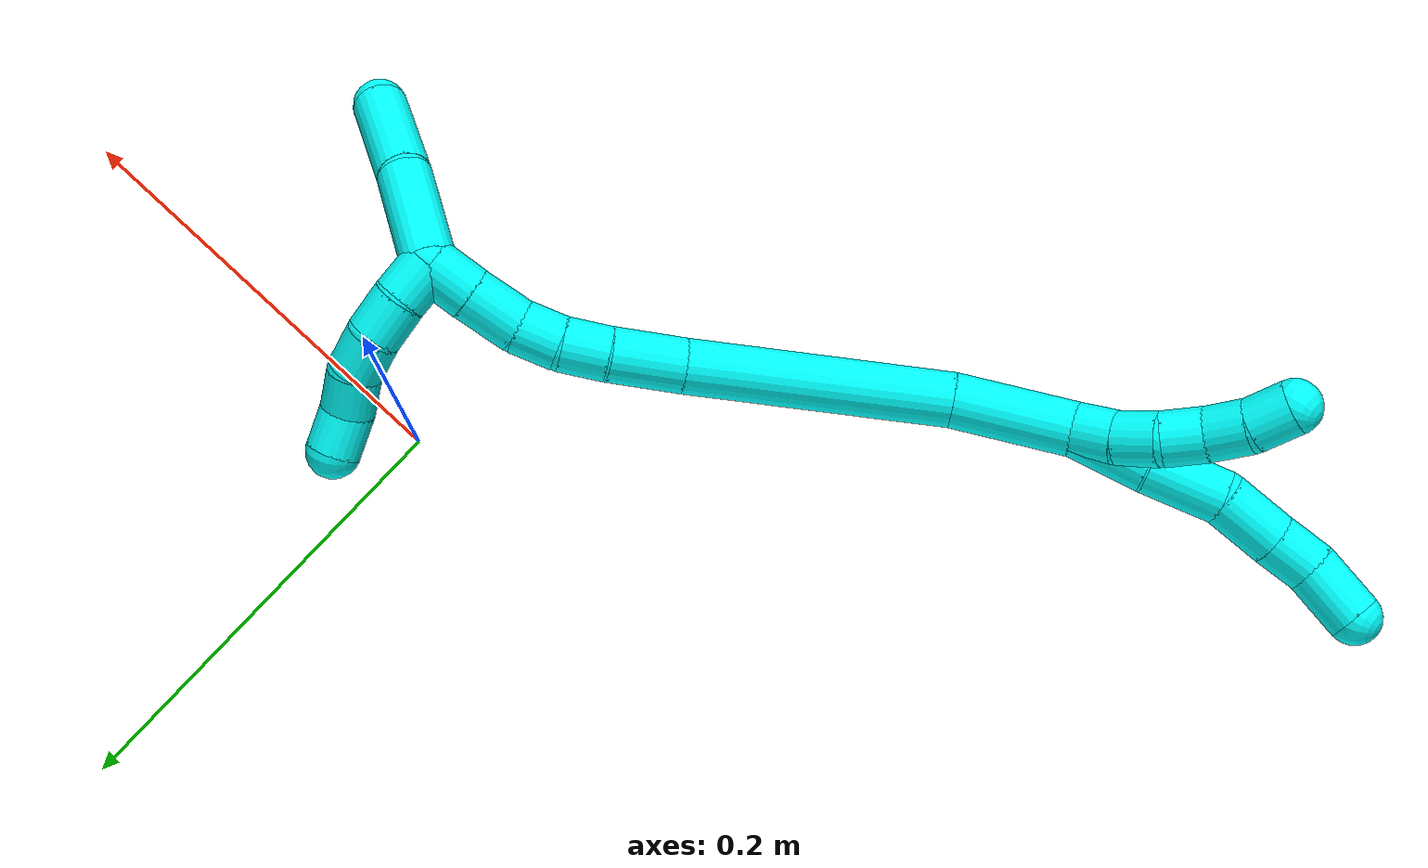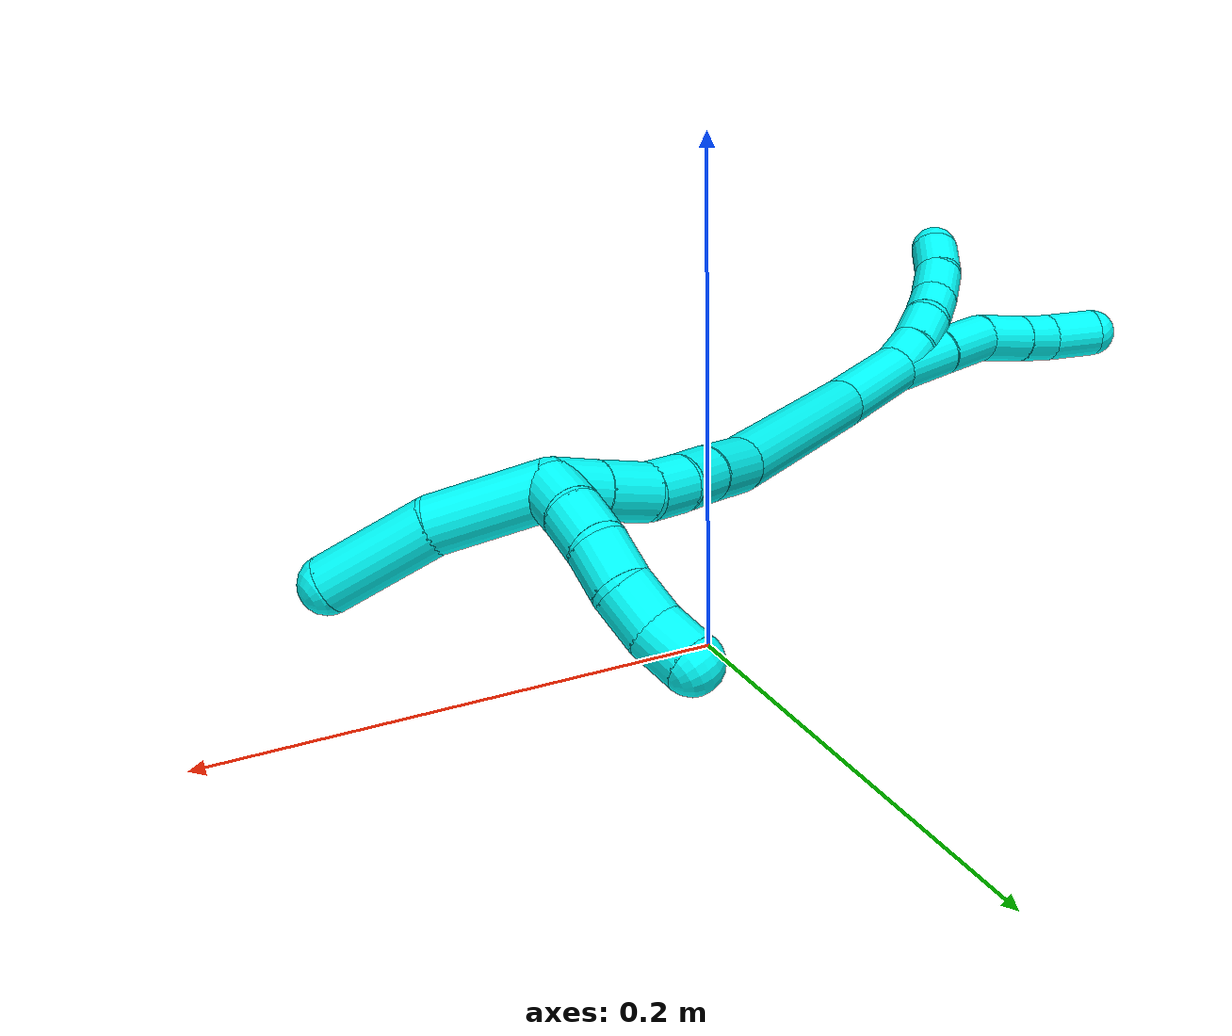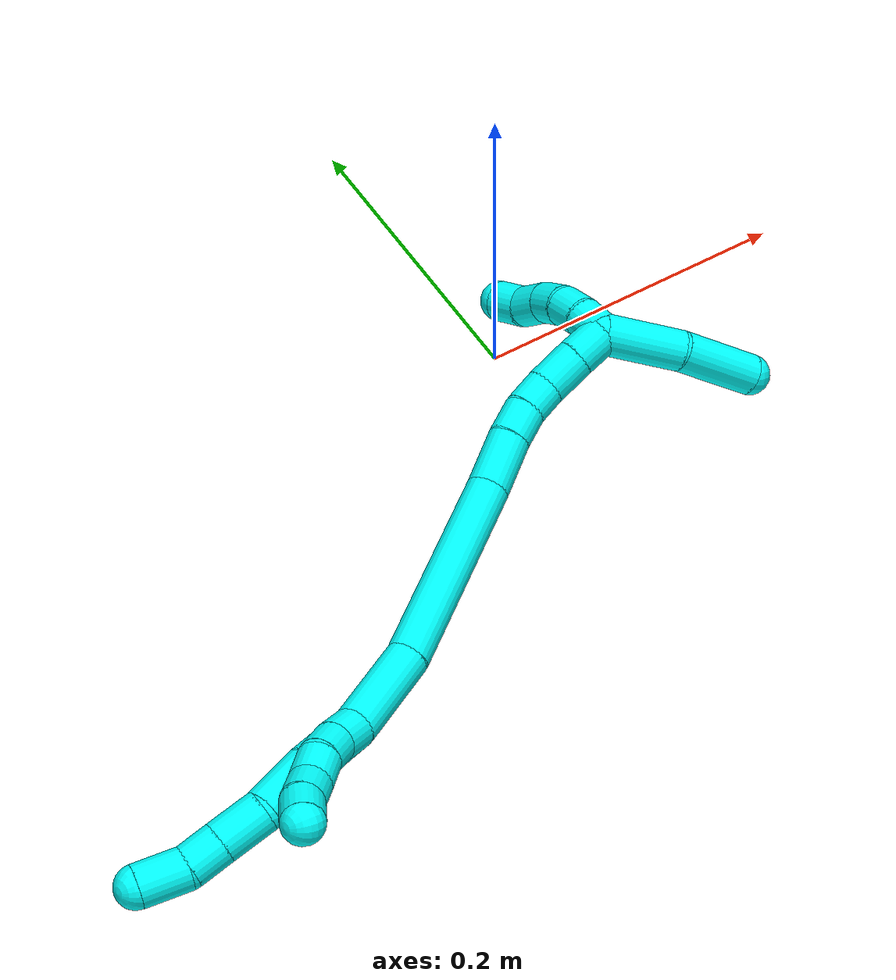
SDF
<sdf version="1.7">
 <world name="default">
  <model name="3">
   <static>0</static>
   <link name="3">
    <collision name="collision-cylinder-e_1_2_8">
     <pose>-0.00657 0.000202 0.016685 -0.012132 -0.375085 0.002302</pose>
     <geometry><cylinder><radius>0.0125</radius><length>0.035867</length></cylinder></geometry>
     <surface>
      <friction><ode><mu>1.16</mu><mu2>1.16</mu2><slip1>0</slip1><slip2>0</slip2></ode></friction>
      <contact><ode><kp>1e+06</kp><kd>1</kd><max_vel>0</max_vel><min_depth>0.001</min_depth></ode></contact>
     </surface>
    </collision>
    <visual name="visual-cylinder-e_1_2_8">
     <pose>-0.00657 0.000202 0.016685 -0.012132 -0.375085 0.002302</pose>
     <geometry><cylinder><radius>0.0125</radius><length>0.035867</length></cylinder></geometry>
     <material><ambient>0.003922 1 0.996078 1</ambient></material>
    </visual>
    <collision name="collision-cylinder-e_2_8_9">
     <pose>-0.02081 -0.000328 0.049236 0.046153 -0.449944 -0.010564</pose>
     <geometry><cylinder><radius>0.0125</radius><length>0.035274</length></cylinder></geometry>
     <surface>
      <friction><ode><mu>1.16</mu><mu2>1.16</mu2><slip1>0</slip1><slip2>0</slip2></ode></friction>
      <contact><ode><kp>1e+06</kp><kd>1</kd><max_vel>0</max_vel><min_depth>0.001</min_depth></ode></contact>
     </surface>
    </collision>
    <visual name="visual-cylinder-e_2_8_9">
     <pose>-0.02081 -0.000328 0.049236 0.046153 -0.449944 -0.010564</pose>
     <geometry><cylinder><radius>0.0125</radius><length>0.035274</length></cylinder></geometry>
     <material><ambient>0.003922 1 0.996078 1</ambient></material>
    </visual>
    <collision name="collision-cylinder-e_3_9_10">
     <pose>-0.035437 0.002573 0.077183 -0.29208 -0.50386 0.075684</pose>
     <geometry><cylinder><radius>0.0125</radius><length>0.028816</length></cylinder></geometry>
     <surface>
      <friction><ode><mu>1.16</mu><mu2>1.16</mu2><slip1>0</slip1><slip2>0</slip2></ode></friction>
      <contact><ode><kp>1e+06</kp><kd>1</kd><max_vel>0</max_vel><min_depth>0.001</min_depth></ode></contact>
     </surface>
    </collision>
    <visual name="visual-cylinder-e_3_9_10">
     <pose>-0.035437 0.002573 0.077183 -0.29208 -0.50386 0.075684</pose>
     <geometry><cylinder><radius>0.0125</radius><length>0.028816</length></cylinder></geometry>
     <material><ambient>0.003922 1 0.996078 1</ambient></material>
    </visual>
    <collision name="collision-cylinder-e_4_10_11">
     <pose>-0.047459 0.008481 0.098503 -0.241567 -0.48931 0.060585</pose>
     <geometry><cylinder><radius>0.0125</radius><length>0.021555</length></cylinder></geometry>
     <surface>
      <friction><ode><mu>1.16</mu><mu2>1.16</mu2><slip1>0</slip1><slip2>0</slip2></ode></friction>
      <contact><ode><kp>1e+06</kp><kd>1</kd><max_vel>0</max_vel><min_depth>0.001</min_depth></ode></contact>
     </surface>
    </collision>
    <visual name="visual-cylinder-e_4_10_11">
     <pose>-0.047459 0.008481 0.098503 -0.241567 -0.48931 0.060585</pose>
     <geometry><cylinder><radius>0.0125</radius><length>0.021555</length></cylinder></geometry>
     <material><ambient>0.003922 1 0.996078 1</ambient></material>
    </visual>
    <collision name="collision-cylinder-e_5_11_6">
     <pose>-0.05587 0.016265 0.120443 -0.409129 -0.237045 0.0494</pose>
     <geometry><cylinder><radius>0.0125</radius><length>0.028488</length></cylinder></geometry>
     <surface>
      <friction><ode><mu>1.16</mu><mu2>1.16</mu2><slip1>0</slip1><slip2>0</slip2></ode></friction>
      <contact><ode><kp>1e+06</kp><kd>1</kd><max_vel>0</max_vel><min_depth>0.001</min_depth></ode></contact>
     </surface>
    </collision>
    <visual name="visual-cylinder-e_5_11_6">
     <pose>-0.05587 0.016265 0.120443 -0.409129 -0.237045 0.0494</pose>
     <geometry><cylinder><radius>0.0125</radius><length>0.028488</length></cylinder></geometry>
     <material><ambient>0.003922 1 0.996078 1</ambient></material>
    </visual>
    <collision name="collision-cylinder-e_1_2_12">
     <pose>-0.000612 -0.002716 0.009605 0.275551 -0.061211 -0.00849</pose>
     <geometry><cylinder><radius>0.0125</radius><length>0.02</length></cylinder></geometry>
     <surface>
      <friction><ode><mu>1.16</mu><mu2>1.16</mu2><slip1>0</slip1><slip2>0</slip2></ode></friction>
      <contact><ode><kp>1e+06</kp><kd>1</kd><max_vel>0</max_vel><min_depth>0.001</min_depth></ode></contact>
     </surface>
    </collision>
    <visual name="visual-cylinder-e_1_2_12">
     <pose>-0.000612 -0.002716 0.009605 0.275551 -0.061211 -0.00849</pose>
     <geometry><cylinder><radius>0.0125</radius><length>0.02</length></cylinder></geometry>
     <material><ambient>0.003922 1 0.996078 1</ambient></material>
    </visual>
    <collision name="collision-cylinder-e_2_12_13">
     <pose>-0.001787 -0.009868 0.028154 0.460436 -0.056375 -0.013216</pose>
     <geometry><cylinder><radius>0.0125</radius><length>0.02</length></cylinder></geometry>
     <surface>
      <friction><ode><mu>1.16</mu><mu2>1.16</mu2><slip1>0</slip1><slip2>0</slip2></ode></friction>
      <contact><ode><kp>1e+06</kp><kd>1</kd><max_vel>0</max_vel><min_depth>0.001</min_depth></ode></contact>
     </surface>
    </collision>
    <visual name="visual-cylinder-e_2_12_13">
     <pose>-0.001787 -0.009868 0.028154 0.460436 -0.056375 -0.013216</pose>
     <geometry><cylinder><radius>0.0125</radius><length>0.02</length></cylinder></geometry>
     <material><ambient>0.003922 1 0.996078 1</ambient></material>
    </visual>
    <collision name="collision-cylinder-e_3_13_14">
     <pose>-0.005259 -0.019689 0.045006 0.597874 -0.295164 -0.091564</pose>
     <geometry><cylinder><radius>0.0125</radius><length>0.02</length></cylinder></geometry>
     <surface>
      <friction><ode><mu>1.16</mu><mu2>1.16</mu2><slip1>0</slip1><slip2>0</slip2></ode></friction>
      <contact><ode><kp>1e+06</kp><kd>1</kd><max_vel>0</max_vel><min_depth>0.001</min_depth></ode></contact>
     </surface>
    </collision>
    <visual name="visual-cylinder-e_3_13_14">
     <pose>-0.005259 -0.019689 0.045006 0.597874 -0.295164 -0.091564</pose>
     <geometry><cylinder><radius>0.0125</radius><length>0.02</length></cylinder></geometry>
     <material><ambient>0.003922 1 0.996078 1</ambient></material>
    </visual>
    <collision name="collision-cylinder-e_4_14_15">
     <pose>-0.008652 -0.031232 0.060779 0.664229 -0.048433 -0.016707</pose>
     <geometry><cylinder><radius>0.0125</radius><length>0.02</length></cylinder></geometry>
     <surface>
      <friction><ode><mu>1.16</mu><mu2>1.16</mu2><slip1>0</slip1><slip2>0</slip2></ode></friction>
      <contact><ode><kp>1e+06</kp><kd>1</kd><max_vel>0</max_vel><min_depth>0.001</min_depth></ode></contact>
     </surface>
    </collision>
    <visual name="visual-cylinder-e_4_14_15">
     <pose>-0.008652 -0.031232 0.060779 0.664229 -0.048433 -0.016707</pose>
     <geometry><cylinder><radius>0.0125</radius><length>0.02</length></cylinder></geometry>
     <material><ambient>0.003922 1 0.996078 1</ambient></material>
    </visual>
    <collision name="collision-cylinder-e_5_15_5">
     <pose>-0.010117 -0.04514 0.074886 0.892687 -0.09819 -0.047018</pose>
     <geometry><cylinder><radius>0.0125</radius><length>0.02</length></cylinder></geometry>
     <surface>
      <friction><ode><mu>1.16</mu><mu2>1.16</mu2><slip1>0</slip1><slip2>0</slip2></ode></friction>
      <contact><ode><kp>1e+06</kp><kd>1</kd><max_vel>0</max_vel><min_depth>0.001</min_depth></ode></contact>
     </surface>
    </collision>
    <visual name="visual-cylinder-e_5_15_5">
     <pose>-0.010117 -0.04514 0.074886 0.892687 -0.09819 -0.047018</pose>
     <geometry><cylinder><radius>0.0125</radius><length>0.02</length></cylinder></geometry>
     <material><ambient>0.003922 1 0.996078 1</ambient></material>
    </visual>
    <collision name="collision-cylinder-e_1_2_16">
     <pose>0.011837 0.005829 -0.024708 -2.90992 0.436303 -2.17488</pose>
     <geometry><cylinder><radius>0.0125</radius><length>0.05602</length></cylinder></geometry>
     <surface>
      <friction><ode><mu>1.16</mu><mu2>1.16</mu2><slip1>0</slip1><slip2>0</slip2></ode></friction>
      <contact><ode><kp>1e+06</kp><kd>1</kd><max_vel>0</max_vel><min_depth>0.001</min_depth></ode></contact>
     </surface>
    </collision>
    <visual name="visual-cylinder-e_1_2_16">
     <pose>0.011837 0.005829 -0.024708 -2.90992 0.436303 -2.17488</pose>
     <geometry><cylinder><radius>0.0125</radius><length>0.05602</length></cylinder></geometry>
     <material><ambient>0.003922 1 0.996078 1</ambient></material>
    </visual>
    <collision name="collision-cylinder-e_2_16_17">
     <pose>0.057929 0.028816 -0.095854 -2.78766 0.605281 -2.10128</pose>
     <geometry><cylinder><radius>0.0125</radius><length>0.120406</length></cylinder></geometry>
     <surface>
      <friction><ode><mu>1.16</mu><mu2>1.16</mu2><slip1>0</slip1><slip2>0</slip2></ode></friction>
      <contact><ode><kp>1e+06</kp><kd>1</kd><max_vel>0</max_vel><min_depth>0.001</min_depth></ode></contact>
     </surface>
    </collision>
    <visual name="visual-cylinder-e_2_16_17">
     <pose>0.057929 0.028816 -0.095854 -2.78766 0.605281 -2.10128</pose>
     <geometry><cylinder><radius>0.0125</radius><length>0.120406</length></cylinder></geometry>
     <material><ambient>0.003922 1 0.996078 1</ambient></material>
    </visual>
    <collision name="collision-cylinder-e_3_17_18">
     <pose>0.103841 0.049947 -0.154373 -2.8239 0.741985 -2.36029</pose>
     <geometry><cylinder><radius>0.0125</radius><length>0.034502</length></cylinder></geometry>
     <surface>
      <friction><ode><mu>1.16</mu><mu2>1.16</mu2><slip1>0</slip1><slip2>0</slip2></ode></friction>
      <contact><ode><kp>1e+06</kp><kd>1</kd><max_vel>0</max_vel><min_depth>0.001</min_depth></ode></contact>
     </surface>
    </collision>
    <visual name="visual-cylinder-e_3_17_18">
     <pose>0.103841 0.049947 -0.154373 -2.8239 0.741985 -2.36029</pose>
     <geometry><cylinder><radius>0.0125</radius><length>0.034502</length></cylinder></geometry>
     <material><ambient>0.003922 1 0.996078 1</ambient></material>
    </visual>
    <collision name="collision-cylinder-e_4_18_19">
     <pose>0.122012 0.055952 -0.174664 -2.89891 0.656148 -2.45358</pose>
     <geometry><cylinder><radius>0.0125</radius><length>0.021354</length></cylinder></geometry>
     <surface>
      <friction><ode><mu>1.16</mu><mu2>1.16</mu2><slip1>0</slip1><slip2>0</slip2></ode></friction>
      <contact><ode><kp>1e+06</kp><kd>1</kd><max_vel>0</max_vel><min_depth>0.001</min_depth></ode></contact>
     </surface>
    </collision>
    <visual name="visual-cylinder-e_4_18_19">
     <pose>0.122012 0.055952 -0.174664 -2.89891 0.656148 -2.45358</pose>
     <geometry><cylinder><radius>0.0125</radius><length>0.021354</length></cylinder></geometry>
     <material><ambient>0.003922 1 0.996078 1</ambient></material>
    </visual>
    <collision name="collision-cylinder-e_5_19_20">
     <pose>0.133829 0.058323 -0.191473 -3.10232 0.552449 -3.00325</pose>
     <geometry><cylinder><radius>0.0125</radius><length>0.020213</length></cylinder></geometry>
     <surface>
      <friction><ode><mu>1.16</mu><mu2>1.16</mu2><slip1>0</slip1><slip2>0</slip2></ode></friction>
      <contact><ode><kp>1e+06</kp><kd>1</kd><max_vel>0</max_vel><min_depth>0.001</min_depth></ode></contact>
     </surface>
    </collision>
    <visual name="visual-cylinder-e_5_19_20">
     <pose>0.133829 0.058323 -0.191473 -3.10232 0.552449 -3.00325</pose>
     <geometry><cylinder><radius>0.0125</radius><length>0.020213</length></cylinder></geometry>
     <material><ambient>0.003922 1 0.996078 1</ambient></material>
    </visual>
    <collision name="collision-cylinder-e_6_20_21">
     <pose>0.146733 0.056264 -0.21007 2.90639 0.636468 2.45289</pose>
     <geometry><cylinder><radius>0.0125</radius><length>0.025577</length></cylinder></geometry>
     <surface>
      <friction><ode><mu>1.16</mu><mu2>1.16</mu2><slip1>0</slip1><slip2>0</slip2></ode></friction>
      <contact><ode><kp>1e+06</kp><kd>1</kd><max_vel>0</max_vel><min_depth>0.001</min_depth></ode></contact>
     </surface>
    </collision>
    <visual name="visual-cylinder-e_6_20_21">
     <pose>0.146733 0.056264 -0.21007 2.90639 0.636468 2.45289</pose>
     <geometry><cylinder><radius>0.0125</radius><length>0.025577</length></cylinder></geometry>
     <material><ambient>0.003922 1 0.996078 1</ambient></material>
    </visual>
    <collision name="collision-cylinder-e_7_21_1">
     <pose>0.160705 0.051383 -0.228643 2.85949 0.620008 2.30709</pose>
     <geometry><cylinder><radius>0.0125</radius><length>0.02193</length></cylinder></geometry>
     <surface>
      <friction><ode><mu>1.16</mu><mu2>1.16</mu2><slip1>0</slip1><slip2>0</slip2></ode></friction>
      <contact><ode><kp>1e+06</kp><kd>1</kd><max_vel>0</max_vel><min_depth>0.001</min_depth></ode></contact>
     </surface>
    </collision>
    <visual name="visual-cylinder-e_7_21_1">
     <pose>0.160705 0.051383 -0.228643 2.85949 0.620008 2.30709</pose>
     <geometry><cylinder><radius>0.0125</radius><length>0.02193</length></cylinder></geometry>
     <material><ambient>0.003922 1 0.996078 1</ambient></material>
    </visual>
    <collision name="collision-cylinder-e_1_1_22">
     <pose>0.169729 0.058424 -0.238709 -1.72649 0.268518 -0.313265</pose>
     <geometry><cylinder><radius>0.0125</radius><length>0.02</length></cylinder></geometry>
     <surface>
      <friction><ode><mu>1.16</mu><mu2>1.16</mu2><slip1>0</slip1><slip2>0</slip2></ode></friction>
      <contact><ode><kp>1e+06</kp><kd>1</kd><max_vel>0</max_vel><min_depth>0.001</min_depth></ode></contact>
     </surface>
    </collision>
    <visual name="visual-cylinder-e_1_1_22">
     <pose>0.169729 0.058424 -0.238709 -1.72649 0.268518 -0.313265</pose>
     <geometry><cylinder><radius>0.0125</radius><length>0.02</length></cylinder></geometry>
     <material><ambient>0.003922 1 0.996078 1</ambient></material>
    </visual>
    <collision name="collision-cylinder-e_2_22_23">
     <pose>0.173505 0.07774 -0.241899 -1.74224 0.112466 -0.133554</pose>
     <geometry><cylinder><radius>0.0125</radius><length>0.02</length></cylinder></geometry>
     <surface>
      <friction><ode><mu>1.16</mu><mu2>1.16</mu2><slip1>0</slip1><slip2>0</slip2></ode></friction>
      <contact><ode><kp>1e+06</kp><kd>1</kd><max_vel>0</max_vel><min_depth>0.001</min_depth></ode></contact>
     </surface>
    </collision>
    <visual name="visual-cylinder-e_2_22_23">
     <pose>0.173505 0.07774 -0.241899 -1.74224 0.112466 -0.133554</pose>
     <geometry><cylinder><radius>0.0125</radius><length>0.02</length></cylinder></geometry>
     <material><ambient>0.003922 1 0.996078 1</ambient></material>
    </visual>
    <collision name="collision-cylinder-e_3_23_24">
     <pose>0.173168 0.097225 -0.245569 -1.77172 -0.146363 0.179018</pose>
     <geometry><cylinder><radius>0.0125</radius><length>0.02</length></cylinder></geometry>
     <surface>
      <friction><ode><mu>1.16</mu><mu2>1.16</mu2><slip1>0</slip1><slip2>0</slip2></ode></friction>
      <contact><ode><kp>1e+06</kp><kd>1</kd><max_vel>0</max_vel><min_depth>0.001</min_depth></ode></contact>
     </surface>
    </collision>
    <visual name="visual-cylinder-e_3_23_24">
     <pose>0.173168 0.097225 -0.245569 -1.77172 -0.146363 0.179018</pose>
     <geometry><cylinder><radius>0.0125</radius><length>0.02</length></cylinder></geometry>
     <material><ambient>0.003922 1 0.996078 1</ambient></material>
    </visual>
    <collision name="collision-cylinder-e_4_24_25">
     <pose>0.16825 0.116301 -0.24767 -1.5843 -0.353321 0.358021</pose>
     <geometry><cylinder><radius>0.0125</radius><length>0.02</length></cylinder></geometry>
     <surface>
      <friction><ode><mu>1.16</mu><mu2>1.16</mu2><slip1>0</slip1><slip2>0</slip2></ode></friction>
      <contact><ode><kp>1e+06</kp><kd>1</kd><max_vel>0</max_vel><min_depth>0.001</min_depth></ode></contact>
     </surface>
    </collision>
    <visual name="visual-cylinder-e_4_24_25">
     <pose>0.16825 0.116301 -0.24767 -1.5843 -0.353321 0.358021</pose>
     <geometry><cylinder><radius>0.0125</radius><length>0.02</length></cylinder></geometry>
     <material><ambient>0.003922 1 0.996078 1</ambient></material>
    </visual>
    <collision name="collision-cylinder-e_5_25_4">
     <pose>0.164527 0.135659 -0.247166 -1.50765 -0.026286 0.024677</pose>
     <geometry><cylinder><radius>0.0125</radius><length>0.02</length></cylinder></geometry>
     <surface>
      <friction><ode><mu>1.16</mu><mu2>1.16</mu2><slip1>0</slip1><slip2>0</slip2></ode></friction>
      <contact><ode><kp>1e+06</kp><kd>1</kd><max_vel>0</max_vel><min_depth>0.001</min_depth></ode></contact>
     </surface>
    </collision>
    <visual name="visual-cylinder-e_5_25_4">
     <pose>0.164527 0.135659 -0.247166 -1.50765 -0.026286 0.024677</pose>
     <geometry><cylinder><radius>0.0125</radius><length>0.02</length></cylinder></geometry>
     <material><ambient>0.003922 1 0.996078 1</ambient></material>
    </visual>
    <collision name="collision-cylinder-e_1_1_26">
     <pose>0.160773 0.035933 -0.257699 2.57731 -0.254383 -0.830958</pose>
     <geometry><cylinder><radius>0.0125</radius><length>0.050099</length></cylinder></geometry>
     <surface>
      <friction><ode><mu>1.16</mu><mu2>1.16</mu2><slip1>0</slip1><slip2>0</slip2></ode></friction>
      <contact><ode><kp>1e+06</kp><kd>1</kd><max_vel>0</max_vel><min_depth>0.001</min_depth></ode></contact>
     </surface>
    </collision>
    <visual name="visual-cylinder-e_1_1_26">
     <pose>0.160773 0.035933 -0.257699 2.57731 -0.254383 -0.830958</pose>
     <geometry><cylinder><radius>0.0125</radius><length>0.050099</length></cylinder></geometry>
     <material><ambient>0.003922 1 0.996078 1</ambient></material>
    </visual>
    <collision name="collision-cylinder-e_2_26_3">
     <pose>0.144994 0.013847 -0.299387 2.73536 -0.389531 -1.5277</pose>
     <geometry><cylinder><radius>0.0125</radius><length>0.049901</length></cylinder></geometry>
     <surface>
      <friction><ode><mu>1.16</mu><mu2>1.16</mu2><slip1>0</slip1><slip2>0</slip2></ode></friction>
      <contact><ode><kp>1e+06</kp><kd>1</kd><max_vel>0</max_vel><min_depth>0.001</min_depth></ode></contact>
     </surface>
    </collision>
    <visual name="visual-cylinder-e_2_26_3">
     <pose>0.144994 0.013847 -0.299387 2.73536 -0.389531 -1.5277</pose>
     <geometry><cylinder><radius>0.0125</radius><length>0.049901</length></cylinder></geometry>
     <material><ambient>0.003922 1 0.996078 1</ambient></material>
    </visual>
    <collision name="collision-sphere-3">
     <pose>0.135519 0.004726 -0.32059 0 -0 0</pose>
     <geometry><sphere><radius>0.0125</radius></sphere></geometry>
     <surface>
      <friction><ode><mu>1.16</mu><mu2>1.16</mu2><slip1>0</slip1><slip2>0</slip2></ode></friction>
      <contact><ode><kp>1e+06</kp><kd>1</kd><max_vel>0</max_vel><min_depth>0.001</min_depth></ode></contact>
     </surface>
    </collision>
    <visual name="visual-sphere-3">
     <pose>0.135519 0.004726 -0.32059 0 -0 0</pose>
     <geometry><sphere><radius>0.0125</radius></sphere></geometry>
     <material><ambient>0.003922 1 0.996078 1</ambient></material>
    </visual>
    <collision name="collision-sphere-26">
     <pose>0.154469 0.022968 -0.278184 0 -0 0</pose>
     <geometry><sphere><radius>0.0125</radius></sphere></geometry>
     <surface>
      <friction><ode><mu>1.16</mu><mu2>1.16</mu2><slip1>0</slip1><slip2>0</slip2></ode></friction>
      <contact><ode><kp>1e+06</kp><kd>1</kd><max_vel>0</max_vel><min_depth>0.001</min_depth></ode></contact>
     </surface>
    </collision>
    <visual name="visual-sphere-26">
     <pose>0.154469 0.022968 -0.278184 0 -0 0</pose>
     <geometry><sphere><radius>0.0125</radius></sphere></geometry>
     <material><ambient>0.003922 1 0.996078 1</ambient></material>
    </visual>
    <collision name="collision-sphere-4">
     <pose>0.164264 0.145635 -0.246535 0 -0 0</pose>
     <geometry><sphere><radius>0.0125</radius></sphere></geometry>
     <surface>
      <friction><ode><mu>1.16</mu><mu2>1.16</mu2><slip1>0</slip1><slip2>0</slip2></ode></friction>
      <contact><ode><kp>1e+06</kp><kd>1</kd><max_vel>0</max_vel><min_depth>0.001</min_depth></ode></contact>
     </surface>
    </collision>
    <visual name="visual-sphere-4">
     <pose>0.164264 0.145635 -0.246535 0 -0 0</pose>
     <geometry><sphere><radius>0.0125</radius></sphere></geometry>
     <material><ambient>0.003922 1 0.996078 1</ambient></material>
    </visual>
    <collision name="collision-sphere-25">
     <pose>0.16479 0.125682 -0.247797 0 -0 0</pose>
     <geometry><sphere><radius>0.0125</radius></sphere></geometry>
     <surface>
      <friction><ode><mu>1.16</mu><mu2>1.16</mu2><slip1>0</slip1><slip2>0</slip2></ode></friction>
      <contact><ode><kp>1e+06</kp><kd>1</kd><max_vel>0</max_vel><min_depth>0.001</min_depth></ode></contact>
     </surface>
    </collision>
    <visual name="visual-sphere-25">
     <pose>0.16479 0.125682 -0.247797 0 -0 0</pose>
     <geometry><sphere><radius>0.0125</radius></sphere></geometry>
     <material><ambient>0.003922 1 0.996078 1</ambient></material>
    </visual>
    <collision name="collision-sphere-24">
     <pose>0.17171 0.106919 -0.247543 0 -0 0</pose>
     <geometry><sphere><radius>0.0125</radius></sphere></geometry>
     <surface>
      <friction><ode><mu>1.16</mu><mu2>1.16</mu2><slip1>0</slip1><slip2>0</slip2></ode></friction>
      <contact><ode><kp>1e+06</kp><kd>1</kd><max_vel>0</max_vel><min_depth>0.001</min_depth></ode></contact>
     </surface>
    </collision>
    <visual name="visual-sphere-24">
     <pose>0.17171 0.106919 -0.247543 0 -0 0</pose>
     <geometry><sphere><radius>0.0125</radius></sphere></geometry>
     <material><ambient>0.003922 1 0.996078 1</ambient></material>
    </visual>
    <collision name="collision-sphere-23">
     <pose>0.174627 0.087531 -0.243595 0 -0 0</pose>
     <geometry><sphere><radius>0.0125</radius></sphere></geometry>
     <surface>
      <friction><ode><mu>1.16</mu><mu2>1.16</mu2><slip1>0</slip1><slip2>0</slip2></ode></friction>
      <contact><ode><kp>1e+06</kp><kd>1</kd><max_vel>0</max_vel><min_depth>0.001</min_depth></ode></contact>
     </surface>
    </collision>
    <visual name="visual-sphere-23">
     <pose>0.174627 0.087531 -0.243595 0 -0 0</pose>
     <geometry><sphere><radius>0.0125</radius></sphere></geometry>
     <material><ambient>0.003922 1 0.996078 1</ambient></material>
    </visual>
    <collision name="collision-sphere-22">
     <pose>0.172382 0.067949 -0.240204 0 -0 0</pose>
     <geometry><sphere><radius>0.0125</radius></sphere></geometry>
     <surface>
      <friction><ode><mu>1.16</mu><mu2>1.16</mu2><slip1>0</slip1><slip2>0</slip2></ode></friction>
      <contact><ode><kp>1e+06</kp><kd>1</kd><max_vel>0</max_vel><min_depth>0.001</min_depth></ode></contact>
     </surface>
    </collision>
    <visual name="visual-sphere-22">
     <pose>0.172382 0.067949 -0.240204 0 -0 0</pose>
     <geometry><sphere><radius>0.0125</radius></sphere></geometry>
     <material><ambient>0.003922 1 0.996078 1</ambient></material>
    </visual>
    <collision name="collision-sphere-1">
     <pose>0.167076 0.048899 -0.237214 0 -0 0</pose>
     <geometry><sphere><radius>0.0125</radius></sphere></geometry>
     <surface>
      <friction><ode><mu>1.16</mu><mu2>1.16</mu2><slip1>0</slip1><slip2>0</slip2></ode></friction>
      <contact><ode><kp>1e+06</kp><kd>1</kd><max_vel>0</max_vel><min_depth>0.001</min_depth></ode></contact>
     </surface>
    </collision>
    <visual name="visual-sphere-1">
     <pose>0.167076 0.048899 -0.237214 0 -0 0</pose>
     <geometry><sphere><radius>0.0125</radius></sphere></geometry>
     <material><ambient>0.003922 1 0.996078 1</ambient></material>
    </visual>
    <collision name="collision-sphere-21">
     <pose>0.154334 0.053867 -0.220071 0 -0 0</pose>
     <geometry><sphere><radius>0.0125</radius></sphere></geometry>
     <surface>
      <friction><ode><mu>1.16</mu><mu2>1.16</mu2><slip1>0</slip1><slip2>0</slip2></ode></friction>
      <contact><ode><kp>1e+06</kp><kd>1</kd><max_vel>0</max_vel><min_depth>0.001</min_depth></ode></contact>
     </surface>
    </collision>
    <visual name="visual-sphere-21">
     <pose>0.154334 0.053867 -0.220071 0 -0 0</pose>
     <geometry><sphere><radius>0.0125</radius></sphere></geometry>
     <material><ambient>0.003922 1 0.996078 1</ambient></material>
    </visual>
    <collision name="collision-sphere-6">
     <pose>-0.059215 0.021773 0.133146 0 -0 0</pose>
     <geometry><sphere><radius>0.0125</radius></sphere></geometry>
     <surface>
      <friction><ode><mu>1.16</mu><mu2>1.16</mu2><slip1>0</slip1><slip2>0</slip2></ode></friction>
      <contact><ode><kp>1e+06</kp><kd>1</kd><max_vel>0</max_vel><min_depth>0.001</min_depth></ode></contact>
     </surface>
    </collision>
    <visual name="visual-sphere-6">
     <pose>-0.059215 0.021773 0.133146 0 -0 0</pose>
     <geometry><sphere><radius>0.0125</radius></sphere></geometry>
     <material><ambient>0.003922 1 0.996078 1</ambient></material>
    </visual>
    <collision name="collision-sphere-11">
     <pose>-0.052525 0.010757 0.10774 0 -0 0</pose>
     <geometry><sphere><radius>0.0125</radius></sphere></geometry>
     <surface>
      <friction><ode><mu>1.16</mu><mu2>1.16</mu2><slip1>0</slip1><slip2>0</slip2></ode></friction>
      <contact><ode><kp>1e+06</kp><kd>1</kd><max_vel>0</max_vel><min_depth>0.001</min_depth></ode></contact>
     </surface>
    </collision>
    <visual name="visual-sphere-11">
     <pose>-0.052525 0.010757 0.10774 0 -0 0</pose>
     <geometry><sphere><radius>0.0125</radius></sphere></geometry>
     <material><ambient>0.003922 1 0.996078 1</ambient></material>
    </visual>
    <collision name="collision-sphere-10">
     <pose>-0.042394 0.006206 0.089266 0 -0 0</pose>
     <geometry><sphere><radius>0.0125</radius></sphere></geometry>
     <surface>
      <friction><ode><mu>1.16</mu><mu2>1.16</mu2><slip1>0</slip1><slip2>0</slip2></ode></friction>
      <contact><ode><kp>1e+06</kp><kd>1</kd><max_vel>0</max_vel><min_depth>0.001</min_depth></ode></contact>
     </surface>
    </collision>
    <visual name="visual-sphere-10">
     <pose>-0.042394 0.006206 0.089266 0 -0 0</pose>
     <geometry><sphere><radius>0.0125</radius></sphere></geometry>
     <material><ambient>0.003922 1 0.996078 1</ambient></material>
    </visual>
    <collision name="collision-sphere-9">
     <pose>-0.028481 -0.001061 0.0651 0 -0 0</pose>
     <geometry><sphere><radius>0.0125</radius></sphere></geometry>
     <surface>
      <friction><ode><mu>1.16</mu><mu2>1.16</mu2><slip1>0</slip1><slip2>0</slip2></ode></friction>
      <contact><ode><kp>1e+06</kp><kd>1</kd><max_vel>0</max_vel><min_depth>0.001</min_depth></ode></contact>
     </surface>
    </collision>
    <visual name="visual-sphere-9">
     <pose>-0.028481 -0.001061 0.0651 0 -0 0</pose>
     <geometry><sphere><radius>0.0125</radius></sphere></geometry>
     <material><ambient>0.003922 1 0.996078 1</ambient></material>
    </visual>
    <collision name="collision-sphere-2">
     <geometry><sphere><radius>0.0125</radius></sphere></geometry>
     <surface>
      <friction><ode><mu>1.16</mu><mu2>1.16</mu2><slip1>0</slip1><slip2>0</slip2></ode></friction>
      <contact><ode><kp>1e+06</kp><kd>1</kd><max_vel>0</max_vel><min_depth>0.001</min_depth></ode></contact>
     </surface>
    </collision>
    <visual name="visual-sphere-2">
     <geometry><sphere><radius>0.0125</radius></sphere></geometry>
     <material><ambient>0.003922 1 0.996078 1</ambient></material>
    </visual>
    <collision name="collision-sphere-19">
     <pose>0.128525 0.057985 -0.182876 0 -0 0</pose>
     <geometry><sphere><radius>0.0125</radius></sphere></geometry>
     <surface>
      <friction><ode><mu>1.16</mu><mu2>1.16</mu2><slip1>0</slip1><slip2>0</slip2></ode></friction>
      <contact><ode><kp>1e+06</kp><kd>1</kd><max_vel>0</max_vel><min_depth>0.001</min_depth></ode></contact>
     </surface>
    </collision>
    <visual name="visual-sphere-19">
     <pose>0.128525 0.057985 -0.182876 0 -0 0</pose>
     <geometry><sphere><radius>0.0125</radius></sphere></geometry>
     <material><ambient>0.003922 1 0.996078 1</ambient></material>
    </visual>
    <collision name="collision-sphere-8">
     <pose>-0.01314 0.000405 0.033371 0 -0 0</pose>
     <geometry><sphere><radius>0.0125</radius></sphere></geometry>
     <surface>
      <friction><ode><mu>1.16</mu><mu2>1.16</mu2><slip1>0</slip1><slip2>0</slip2></ode></friction>
      <contact><ode><kp>1e+06</kp><kd>1</kd><max_vel>0</max_vel><min_depth>0.001</min_depth></ode></contact>
     </surface>
    </collision>
    <visual name="visual-sphere-8">
     <pose>-0.01314 0.000405 0.033371 0 -0 0</pose>
     <geometry><sphere><radius>0.0125</radius></sphere></geometry>
     <material><ambient>0.003922 1 0.996078 1</ambient></material>
    </visual>
    <collision name="collision-sphere-12">
     <pose>-0.001223 -0.005431 0.019209 0 -0 0</pose>
     <geometry><sphere><radius>0.0125</radius></sphere></geometry>
     <surface>
      <friction><ode><mu>1.16</mu><mu2>1.16</mu2><slip1>0</slip1><slip2>0</slip2></ode></friction>
      <contact><ode><kp>1e+06</kp><kd>1</kd><max_vel>0</max_vel><min_depth>0.001</min_depth></ode></contact>
     </surface>
    </collision>
    <visual name="visual-sphere-12">
     <pose>-0.001223 -0.005431 0.019209 0 -0 0</pose>
     <geometry><sphere><radius>0.0125</radius></sphere></geometry>
     <material><ambient>0.003922 1 0.996078 1</ambient></material>
    </visual>
    <collision name="collision-sphere-13">
     <pose>-0.00235 -0.014304 0.037098 0 -0 0</pose>
     <geometry><sphere><radius>0.0125</radius></sphere></geometry>
     <surface>
      <friction><ode><mu>1.16</mu><mu2>1.16</mu2><slip1>0</slip1><slip2>0</slip2></ode></friction>
      <contact><ode><kp>1e+06</kp><kd>1</kd><max_vel>0</max_vel><min_depth>0.001</min_depth></ode></contact>
     </surface>
    </collision>
    <visual name="visual-sphere-13">
     <pose>-0.00235 -0.014304 0.037098 0 -0 0</pose>
     <geometry><sphere><radius>0.0125</radius></sphere></geometry>
     <material><ambient>0.003922 1 0.996078 1</ambient></material>
    </visual>
    <collision name="collision-sphere-14">
     <pose>-0.008168 -0.025075 0.052914 0 -0 0</pose>
     <geometry><sphere><radius>0.0125</radius></sphere></geometry>
     <surface>
      <friction><ode><mu>1.16</mu><mu2>1.16</mu2><slip1>0</slip1><slip2>0</slip2></ode></friction>
      <contact><ode><kp>1e+06</kp><kd>1</kd><max_vel>0</max_vel><min_depth>0.001</min_depth></ode></contact>
     </surface>
    </collision>
    <visual name="visual-sphere-14">
     <pose>-0.008168 -0.025075 0.052914 0 -0 0</pose>
     <geometry><sphere><radius>0.0125</radius></sphere></geometry>
     <material><ambient>0.003922 1 0.996078 1</ambient></material>
    </visual>
    <collision name="collision-sphere-15">
     <pose>-0.009137 -0.037389 0.068643 0 -0 0</pose>
     <geometry><sphere><radius>0.0125</radius></sphere></geometry>
     <surface>
      <friction><ode><mu>1.16</mu><mu2>1.16</mu2><slip1>0</slip1><slip2>0</slip2></ode></friction>
      <contact><ode><kp>1e+06</kp><kd>1</kd><max_vel>0</max_vel><min_depth>0.001</min_depth></ode></contact>
     </surface>
    </collision>
    <visual name="visual-sphere-15">
     <pose>-0.009137 -0.037389 0.068643 0 -0 0</pose>
     <geometry><sphere><radius>0.0125</radius></sphere></geometry>
     <material><ambient>0.003922 1 0.996078 1</ambient></material>
    </visual>
    <collision name="collision-sphere-5">
     <pose>-0.011097 -0.05289 0.081129 0 -0 0</pose>
     <geometry><sphere><radius>0.0125</radius></sphere></geometry>
     <surface>
      <friction><ode><mu>1.16</mu><mu2>1.16</mu2><slip1>0</slip1><slip2>0</slip2></ode></friction>
      <contact><ode><kp>1e+06</kp><kd>1</kd><max_vel>0</max_vel><min_depth>0.001</min_depth></ode></contact>
     </surface>
    </collision>
    <visual name="visual-sphere-5">
     <pose>-0.011097 -0.05289 0.081129 0 -0 0</pose>
     <geometry><sphere><radius>0.0125</radius></sphere></geometry>
     <material><ambient>0.003922 1 0.996078 1</ambient></material>
    </visual>
    <collision name="collision-sphere-16">
     <pose>0.023674 0.011657 -0.049416 0 -0 0</pose>
     <geometry><sphere><radius>0.0125</radius></sphere></geometry>
     <surface>
      <friction><ode><mu>1.16</mu><mu2>1.16</mu2><slip1>0</slip1><slip2>0</slip2></ode></friction>
      <contact><ode><kp>1e+06</kp><kd>1</kd><max_vel>0</max_vel><min_depth>0.001</min_depth></ode></contact>
     </surface>
    </collision>
    <visual name="visual-sphere-16">
     <pose>0.023674 0.011657 -0.049416 0 -0 0</pose>
     <geometry><sphere><radius>0.0125</radius></sphere></geometry>
     <material><ambient>0.003922 1 0.996078 1</ambient></material>
    </visual>
    <collision name="collision-sphere-17">
     <pose>0.092184 0.045975 -0.142293 0 -0 0</pose>
     <geometry><sphere><radius>0.0125</radius></sphere></geometry>
     <surface>
      <friction><ode><mu>1.16</mu><mu2>1.16</mu2><slip1>0</slip1><slip2>0</slip2></ode></friction>
      <contact><ode><kp>1e+06</kp><kd>1</kd><max_vel>0</max_vel><min_depth>0.001</min_depth></ode></contact>
     </surface>
    </collision>
    <visual name="visual-sphere-17">
     <pose>0.092184 0.045975 -0.142293 0 -0 0</pose>
     <geometry><sphere><radius>0.0125</radius></sphere></geometry>
     <material><ambient>0.003922 1 0.996078 1</ambient></material>
    </visual>
    <collision name="collision-sphere-18">
     <pose>0.115498 0.053919 -0.166453 0 -0 0</pose>
     <geometry><sphere><radius>0.0125</radius></sphere></geometry>
     <surface>
      <friction><ode><mu>1.16</mu><mu2>1.16</mu2><slip1>0</slip1><slip2>0</slip2></ode></friction>
      <contact><ode><kp>1e+06</kp><kd>1</kd><max_vel>0</max_vel><min_depth>0.001</min_depth></ode></contact>
     </surface>
    </collision>
    <visual name="visual-sphere-18">
     <pose>0.115498 0.053919 -0.166453 0 -0 0</pose>
     <geometry><sphere><radius>0.0125</radius></sphere></geometry>
     <material><ambient>0.003922 1 0.996078 1</ambient></material>
    </visual>
    <collision name="collision-sphere-20">
     <pose>0.139132 0.058661 -0.200069 0 -0 0</pose>
     <geometry><sphere><radius>0.0125</radius></sphere></geometry>
     <surface>
      <friction><ode><mu>1.16</mu><mu2>1.16</mu2><slip1>0</slip1><slip2>0</slip2></ode></friction>
      <contact><ode><kp>1e+06</kp><kd>1</kd><max_vel>0</max_vel><min_depth>0.001</min_depth></ode></contact>
     </surface>
    </collision>
    <visual name="visual-sphere-20">
     <pose>0.139132 0.058661 -0.200069 0 -0 0</pose>
     <geometry><sphere><radius>0.0125</radius></sphere></geometry>
     <material><ambient>0.003922 1 0.996078 1</ambient></material>
    </visual>
    <inertial>
     <pose>0.06793 0.028267 -0.098702 0 -0 0</pose>
     <mass>0.75</mass>
     <inertia>
      <ixx>-0.000174</ixx>
      <ixy>0</ixy>
      <ixz>0</ixz>
      <iyy>2e-06</iyy>
      <iyz>0</iyz>
      <izz>-0.000134</izz>
     </inertia>
    </inertial>
   </link>
   <pose>-0.214093 -0.200273 0.019482 -0.776942 -1.01221 0.982102</pose>
  </model>
 </world>
</sdf>
